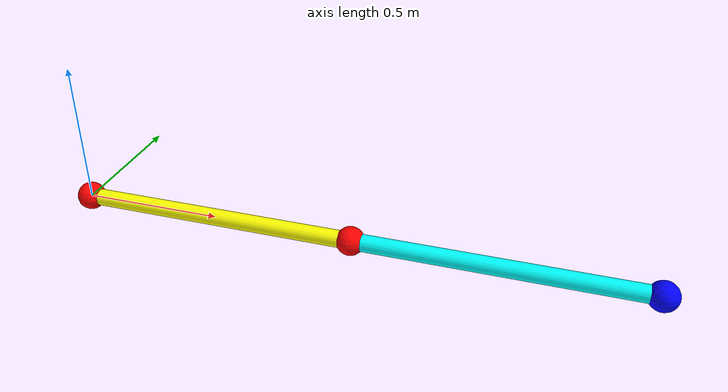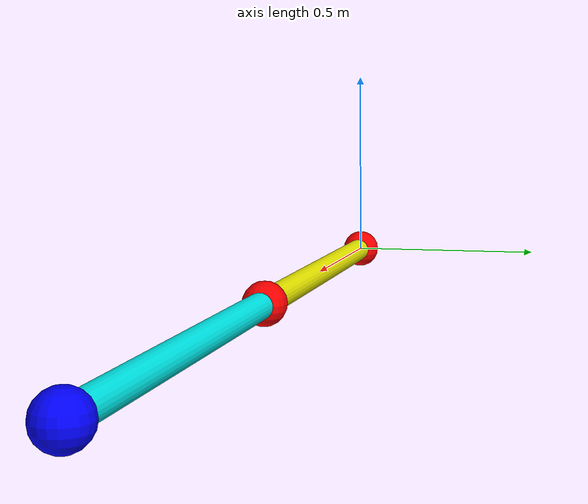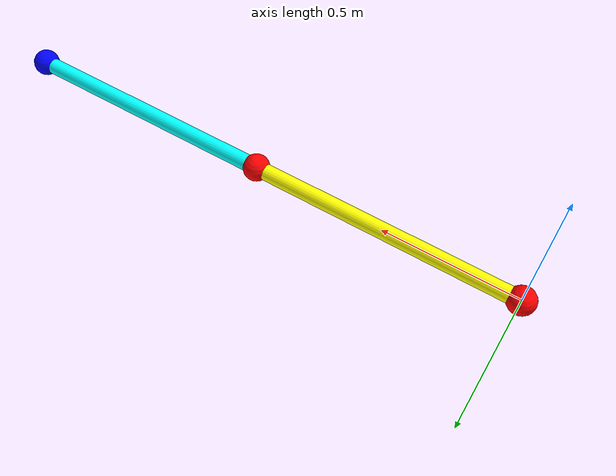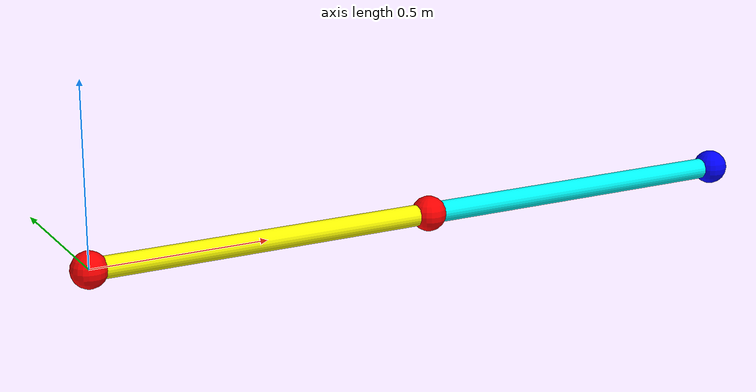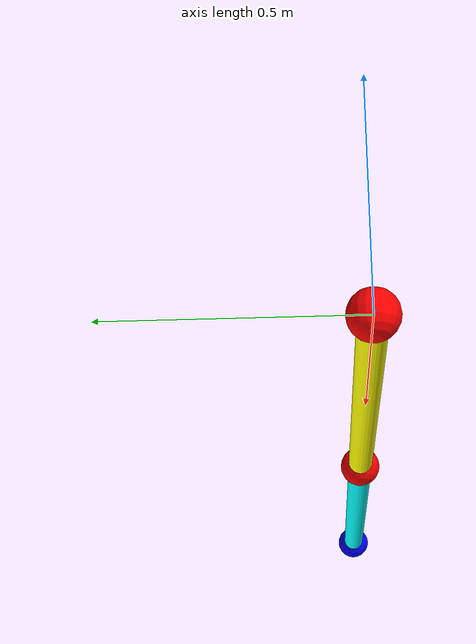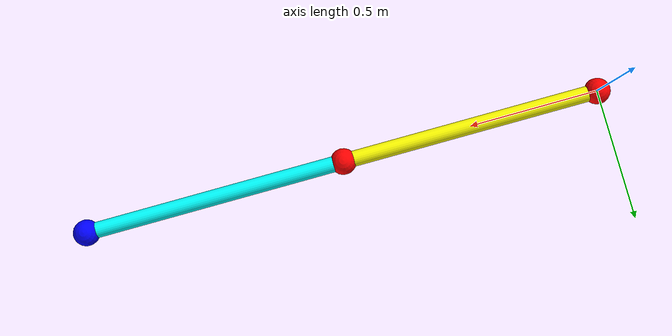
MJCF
<mujoco>
  <visual>
    <headlight ambient="0.5 0.5 0.5"/>
  </visual>
  <option gravity="0 -9.81 0"/>

  <worldbody>
    <light diffuse=".5 .5 .5" pos="0 0 3" dir="0 0 -1"/>
    <body pos="0 0 0" euler="0 0 0">
      <joint name="joint_1" type="hinge" axis="0 0 1" limited="true" range="-180 180"/>
      <geom type="sphere" size="0.05" rgba="1 0 0 1"/>
      <geom name="arm_A" type="cylinder" fromto="0 0 0 1 0 0" size="0.03" rgba="1 1 0 1"/>
      <body pos="1 0 0">
        <joint name="joint_2" type="hinge" axis="0 0 1" limited="true" range="-180 180"/>
        <geom type="sphere" size="0.05" rgba="1 0 0 1"/>
        <geom name="arm_B" type="cylinder" fromto="0 0 0 1 0 0" size="0.03" rgba="0 1 1 1"/>
        <body name="dot_body" pos="1 0 0">
          <site name="dot" type="sphere" size="0.05" rgba="0 0 1 1"/>
          <inertial pos="0 0 0" mass="1"/>
        </body>
      </body>
    </body>
  </worldbody>

  <actuator>
    <motor name="M1" joint="joint_1" gear="1"/>
    <motor name="M2" joint="joint_2" gear="1"/>
  </actuator>

</mujoco>
